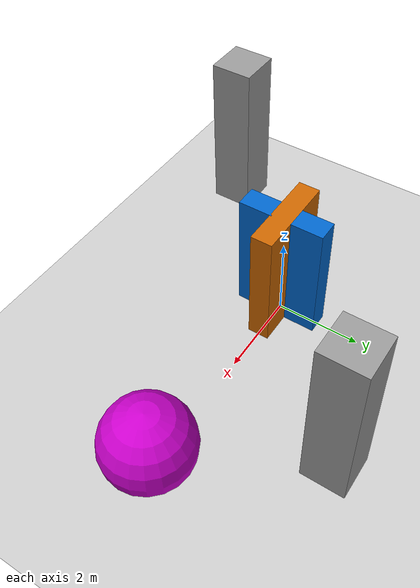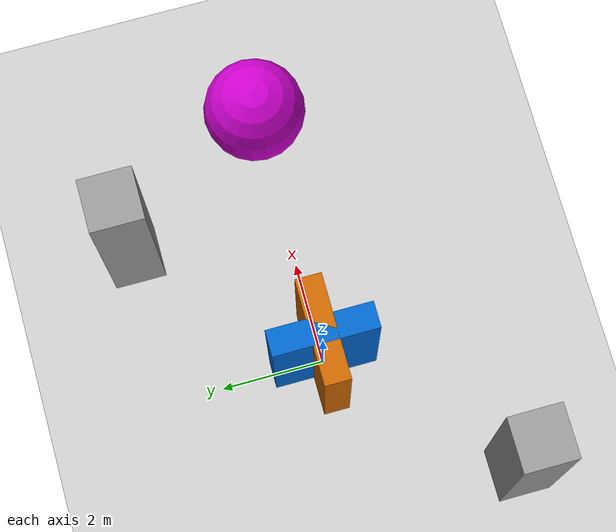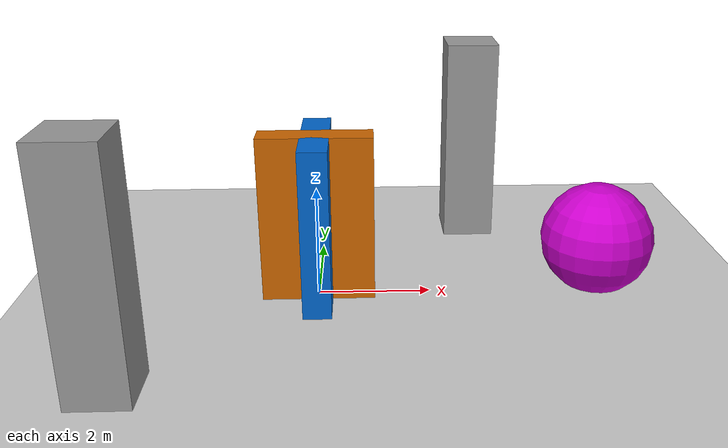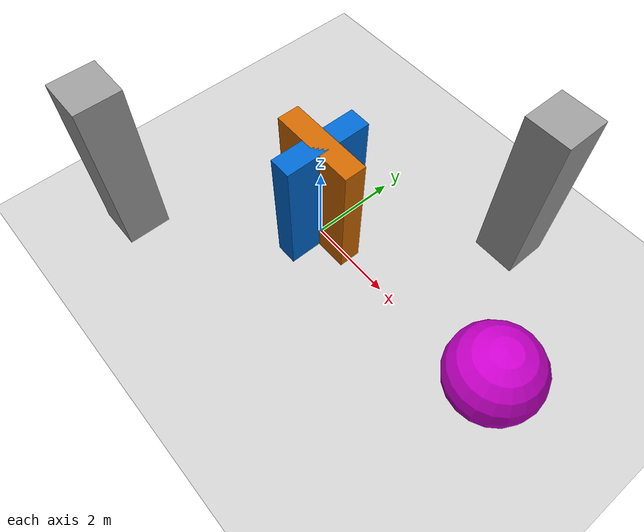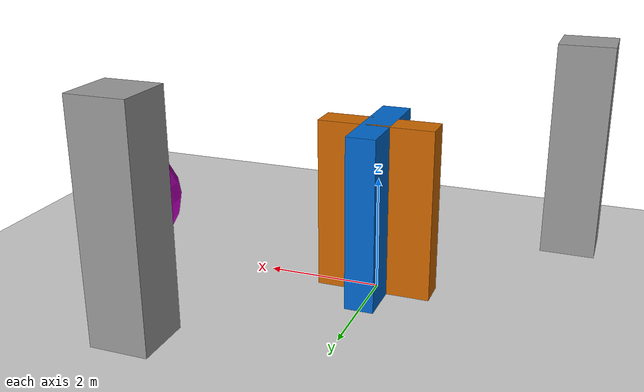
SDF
<?xml version="1.0" ?>
<sdf version="1.6">
  <world name="moving_obstacles_world">
    <!-- Global light source -->
    <include>
      <uri>model://sun</uri>
    </include>

    <!-- Ground plane -->
    <include>
      <uri>model://ground_plane</uri>
    </include>

    <!-- Moving Obstacle 1: Horizontal Patrol -->
    <model name="moving_obstacle_1">
      <static>false</static>
      <link name="obstacle_link">
        <visual name="obstacle_visual">
          <geometry>
            <box>
              <size>2.0 0.5 3.0</size>
            </box>
          </geometry>
          <material>
            <ambient>0.8 0.4 0.0 1</ambient>
            <diffuse>0.8 0.4 0.0 1</diffuse>
            <specular>0.2 0.2 0.2 1</specular>
          </material>
        </visual>
        <collision name="obstacle_collision">
          <geometry>
            <box>
              <size>2.0 0.5 3.0</size>
            </box>
          </geometry>
        </collision>
        <inertial>
          <mass>10.0</mass>
          <inertia>
            <ixx>2.0</ixx>
            <ixy>0</ixy>
            <ixz>0</ixz>
            <iyy>0.5</iyy>
            <iyz>0</iyz>
            <izz>2.0</izz>
          </inertia>
        </inertial>
      </link>

      <!-- Initial pose -->
      <pose>0 0 1.5 0 0 0</pose>

      <!-- Plugin for movement -->
      <plugin name="horizontal_mover" filename="libgazebo_ros_planar_move.so">
        <commandTopic>/obstacle1/cmd_vel</commandTopic>
        <odometryTopic>/obstacle1/odom</odometryTopic>
        <odometryFrame>odom</odometryFrame>
        <odometryRate>20.0</odometryRate>
        <rosDebugLevel>Debug</rosDebugLevel>
        <robotBaseFrame>base_link</robotBaseFrame>
      </plugin>
    </model>

    <!-- Moving Obstacle 2: Vertical Patrol -->
    <model name="moving_obstacle_2">
      <static>false</static>
      <link name="obstacle_link">
        <visual name="obstacle_visual">
          <geometry>
            <box>
              <size>0.5 2.0 3.0</size>
            </box>
          </geometry>
          <material>
            <ambient>0.0 0.4 0.8 1</ambient>
            <diffuse>0.0 0.4 0.8 1</diffuse>
            <specular>0.2 0.2 0.2 1</specular>
          </material>
        </visual>
        <collision name="obstacle_collision">
          <geometry>
            <box>
              <size>0.5 2.0 3.0</size>
            </box>
          </geometry>
        </collision>
        <inertial>
          <mass>10.0</mass>
          <inertia>
            <ixx>0.5</ixx>
            <ixy>0</ixy>
            <ixz>0</ixz>
            <iyy>2.0</iyy>
            <iyz>0</iyz>
            <izz>2.0</izz>
          </inertia>
        </inertial>
      </link>

      <!-- Initial pose -->
      <pose>0 0 1.5 0 0 0</pose>

      <!-- Plugin for movement -->
      <plugin name="vertical_mover" filename="libgazebo_ros_planar_move.so">
        <commandTopic>/obstacle2/cmd_vel</commandTopic>
        <odometryTopic>/obstacle2/odom</odometryTopic>
        <odometryFrame>odom</odometryFrame>
        <odometryRate>20.0</odometryRate>
        <rosDebugLevel>Debug</rosDebugLevel>
        <robotBaseFrame>base_link</robotBaseFrame>
      </plugin>
    </model>

    <!-- Moving Obstacle 3: Circular Pattern -->
    <model name="moving_obstacle_3">
      <static>false</static>
      <link name="obstacle_link">
        <visual name="obstacle_visual">
          <geometry>
            <sphere>
              <radius>1.0</radius>
            </sphere>
          </geometry>
          <material>
            <ambient>0.8 0.0 0.8 1</ambient>
            <diffuse>0.8 0.0 0.8 1</diffuse>
            <specular>0.2 0.2 0.2 1</specular>
          </material>
        </visual>
        <collision name="obstacle_collision">
          <geometry>
            <sphere>
              <radius>1.0</radius>
            </sphere>
          </geometry>
        </collision>
        <inertial>
          <mass>5.0</mass>
          <inertia>
            <ixx>0.4</ixx>
            <ixy>0</ixy>
            <ixz>0</ixz>
            <iyy>0.4</iyy>
            <iyz>0</iyz>
            <izz>0.4</izz>
          </inertia>
        </inertial>
      </link>

      <!-- Initial pose -->
      <pose>5 0 1.0 0 0 0</pose>

      <!-- Plugin for circular movement -->
      <plugin name="circular_mover" filename="libgazebo_ros_planar_move.so">
        <commandTopic>/obstacle3/cmd_vel</commandTopic>
        <odometryTopic>/obstacle3/odom</odometryTopic>
        <odometryFrame>odom</odometryFrame>
        <odometryRate>20.0</odometryRate>
        <rosDebugLevel>Debug</rosDebugLevel>
        <robotBaseFrame>base_link</robotBaseFrame>
      </plugin>
    </model>

    <!-- Static Obstacles for Complex Navigation -->
    <model name="static_obstacle_1">
      <static>true</static>
      <link name="obstacle_link">
        <visual name="obstacle_visual">
          <geometry>
            <box>
              <size>1.0 1.0 4.0</size>
            </box>
          </geometry>
          <material>
            <ambient>0.6 0.6 0.6 1</ambient>
            <diffuse>0.6 0.6 0.6 1</diffuse>
          </material>
        </visual>
        <collision name="obstacle_collision">
          <geometry>
            <box>
              <size>1.0 1.0 4.0</size>
            </box>
          </geometry>
        </collision>
      </link>
      <pose>-3 -3 2.0 0 0 0</pose>
    </model>

    <model name="static_obstacle_2">
      <static>true</static>
      <link name="obstacle_link">
        <visual name="obstacle_visual">
          <geometry>
            <box>
              <size>1.0 1.0 4.0</size>
            </box>
          </geometry>
          <material>
            <ambient>0.6 0.6 0.6 1</ambient>
            <diffuse>0.6 0.6 0.6 1</diffuse>
          </material>
        </visual>
        <collision name="obstacle_collision">
          <geometry>
            <box>
              <size>1.0 1.0 4.0</size>
            </box>
          </geometry>
        </collision>
      </link>
      <pose>3 3 2.0 0 0 0</pose>
    </model>

    <!-- Physics settings for smooth movement -->
    <physics type="ode">
      <max_step_size>0.001</max_step_size>
      <real_time_factor>1.0</real_time_factor>
      <real_time_update_rate>1000</real_time_update_rate>
      <gravity>0 0 -9.81</gravity>
    </physics>

    <!-- GUI settings -->
    <gui fullscreen='0'>
      <camera name='user_camera'>
        <pose>0 0 20 0 1.5708 0</pose>
        <view_controller>orbit</view_controller>
      </camera>
    </gui>
  </world>
</sdf>
